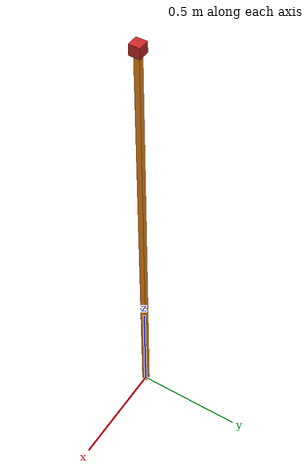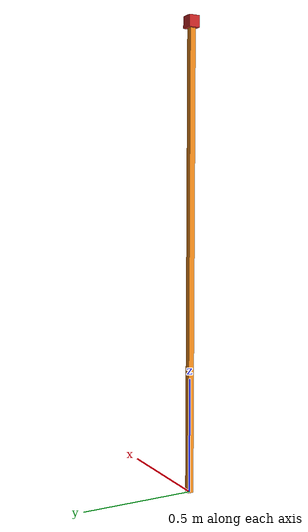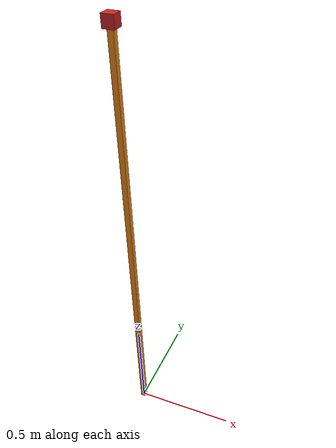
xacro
<?xml version="1.0"?>
<!-- Revolute-Revolute Manipulator -->
<robot name="camera4" xmlns:xacro="http://www.ros.org/wiki/xacro">

  <!-- Constants for robot dimensions -->
  <xacro:property name="PI" value="3.1415926535897931"/>
  <xacro:property name="mass" value="1" /> <!-- arbitrary value for mass -->
  <xacro:property name="width" value="0.025" /> <!-- Square dimensions (widthxwidth) of beams -->
  <xacro:property name="height1" value="2" /> <!-- Link 1 -->
  <xacro:property name="camera4_link" value="0.05" /> <!-- Size of square 'camera' box -->

  <!-- Import all Gazebo-customization elements, including Gazebo colors -->
  <xacro:include filename="$(find camera_description)/urdf/camera4.gazebo" />
  <!-- Import Rviz colors -->
  <xacro:include filename="$(find camera_description)/urdf/materials.xacro" />

  <!-- Used for fixing robot to Gazebo 'base_link' -->
  <link name="world"/>

  <joint name="fixed" type="fixed">
    <parent link="world"/>
    <child link="link1"/>
  </joint>

  <!-- Base Link -->
  <link name="link1">
    <collision>
      <origin xyz="0 0 ${height1/2}" rpy="0 0 0"/>
      <geometry>
	<box size="${width} ${width} ${height1}"/>
      </geometry>
    </collision>

    <visual>
      <origin xyz="0 0 ${height1/2}" rpy="0 0 0"/>
      <geometry>
	<box size="${width} ${width} ${height1}"/>
      </geometry>
      <material name="orange"/>
    </visual>

    <inertial>
      <origin xyz="0 0 ${height1/2}" rpy="0 0 0"/>
      <mass value="${mass}"/>
      <inertia
	  ixx="${mass / 12.0 * (width*width + height1*height1)}" ixy="0.0" ixz="0.0"
	  iyy="${mass / 12.0 * (height1*height1 + width*width)}" iyz="0.0"
	  izz="${mass / 12.0 * (width*width + width*width)}"/>
    </inertial>
  </link>

  <joint name="camera4_joint" type="fixed">
    <axis xyz="0 0 0" />
    <origin xyz="${camera4_link} 0 ${height1}" rpy="0 0 0"/>
    <parent link="link1"/>
    <child link="camera4_link"/>
  </joint>

  <!-- Camera -->
  <link name="camera4_link">
    <collision>
      <origin xyz="${-camera4_link} 0 ${camera4_link/2}" rpy="0 0 0"/>
      <geometry>
	<box size="${camera4_link} ${camera4_link} ${camera4_link}"/>
      </geometry>
    </collision>

    <visual>
      <origin xyz="${-camera4_link} 0 ${camera4_link/2}" rpy="0 0 0"/>
      <geometry>
	<box size="${camera4_link} ${camera4_link} ${camera4_link}"/>
      </geometry>
      <material name="red"/>
    </visual>

    <inertial>
      <mass value="1e-5" />
      <origin xyz="0 0 0" rpy="0 0 0"/>
      <inertia ixx="1e-6" ixy="0" ixz="0" iyy="1e-6" iyz="0" izz="1e-6" />
    </inertial>
  </link>

  <!-- generate an optical frame http://www.ros.org/reps/rep-0103.html#suffix-frames
      so that ros and opencv can operate on the camera frame correctly -->
  <joint name="camera4_optical_joint" type="fixed">
    <!-- these values have to be these values otherwise the gazebo camera image
        won't be aligned properly with the frame it is supposedly originating from -->
    <origin xyz="0 0 0" rpy="${-pi/2} 0 ${-pi/2}"/>
    <parent link="camera4_link"/>
    <child link="camera4_link_optical"/>
  </joint>

  <link name="camera4_link_optical">
  </link>

</robot>
